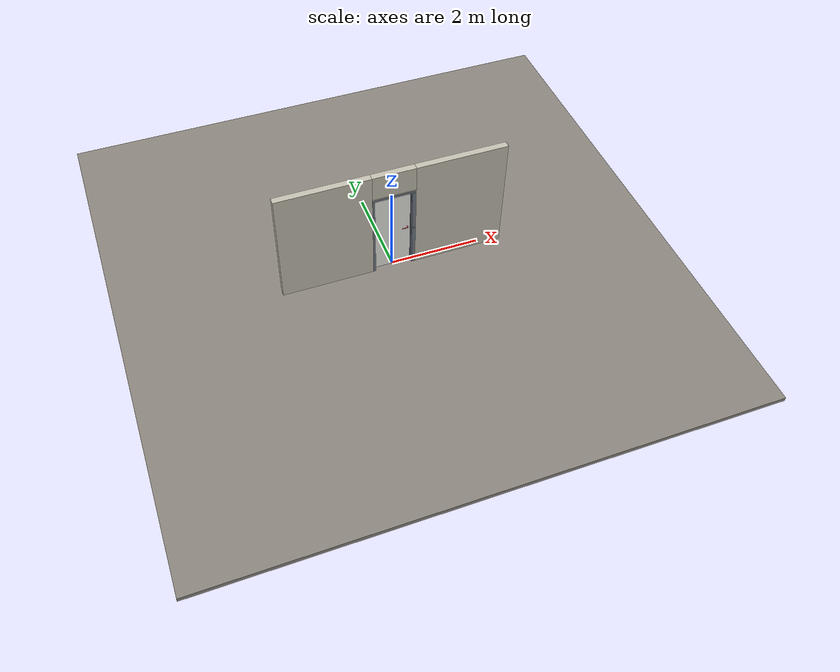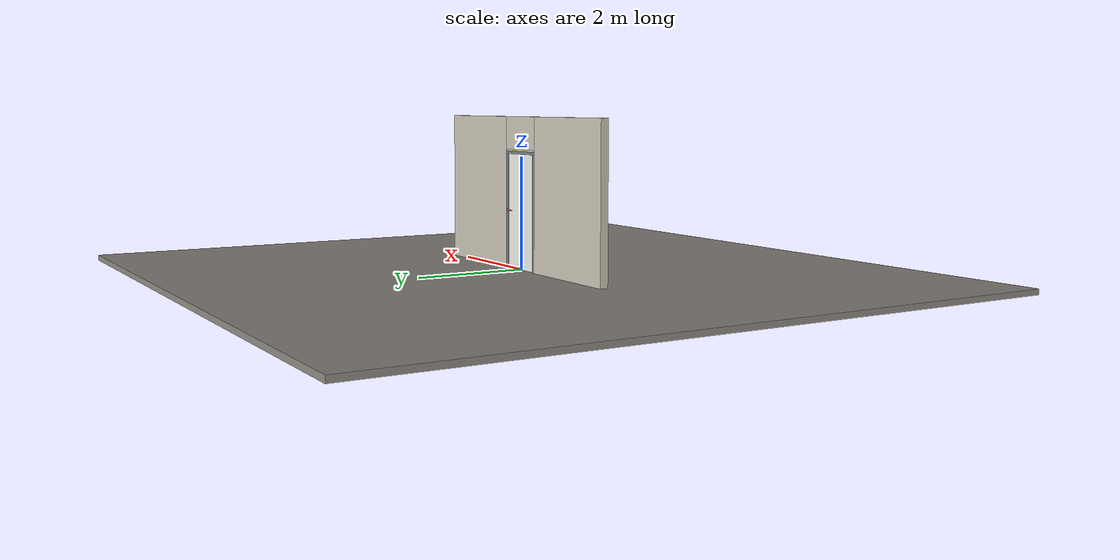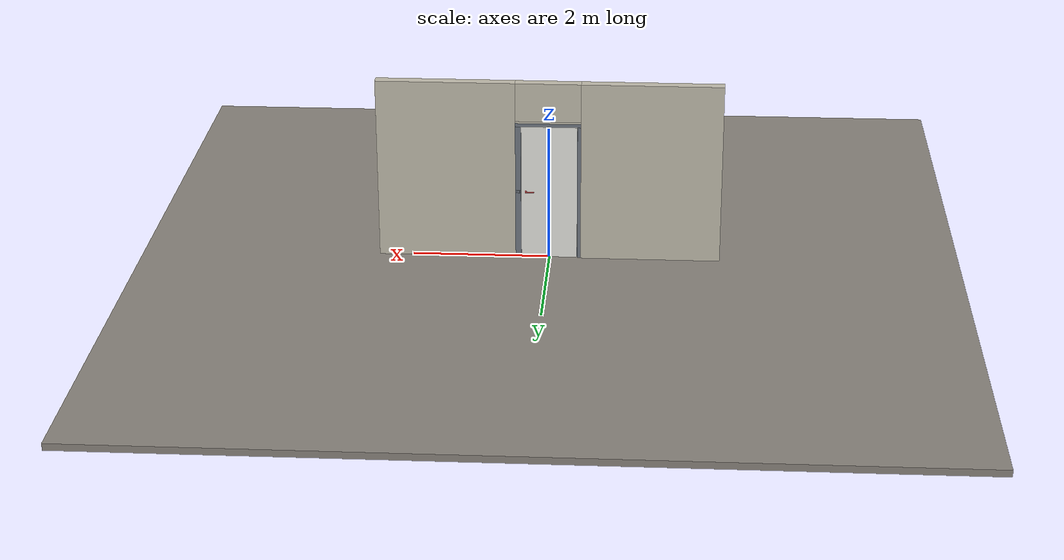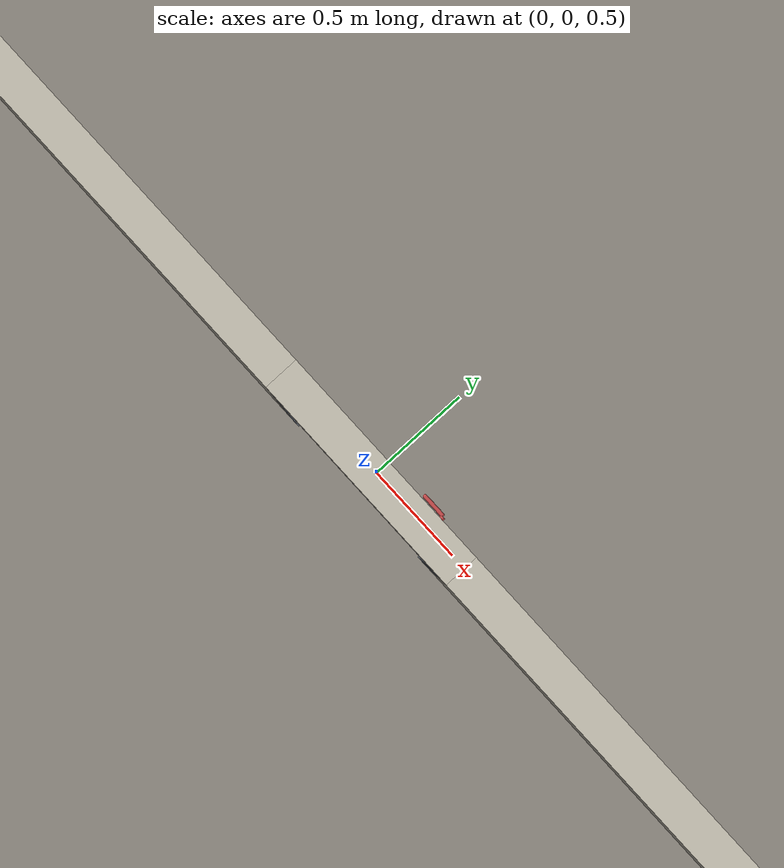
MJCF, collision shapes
<?xml version="1.0" ?>
<mujoco model="db0923_swing_single_minimal">
  <compiler angle="radian" meshdir="../../hardware" texturedir="../../textures" autolimits="true" inertiafromgeom="false"/>
  <option timestep="0.002" integrator="implicitfast" cone="elliptic" impratio="10" noslip_iterations="3">
    <flag multiccd="enable"/>
  </option>
  <size memory="16M"/>
  <default>
    <geom condim="4" solref="0.005 1" solimp="0.95 0.99 0.001"/>
    <joint solreflimit="0.005 1" solimplimit="0.95 0.99 0.001"/>
    <tendon solreflimit="0.005 1"/>
    <equality solref="0.002 1"/>
  </default>
  <visual>
    <headlight ambient="0.4 0.4 0.4" diffuse="0.7 0.7 0.7" specular="0.2 0.2 0.2"/>
    <quality shadowsize="4096"/>
    <map znear="0.01" zfar="60"/>
  </visual>
  <asset>
    <mesh name="lever_9f02b544cf" file="lever_9f02b544cf.obj"/>
    <material name="mat_floor" rgba="0.55 0.53 0.5 1" specular="0.2" shininess="0.15" reflectance="0"/>
    <material name="mat_wall" rgba="0.78 0.76 0.7 1" specular="0.2" shininess="0.1" reflectance="0"/>
    <material name="mat_leaf" rgba="0.93 0.93 0.91 1" specular="0.2" shininess="0.59" reflectance="0"/>
    <material name="mat_leaf_panel" rgba="0.856 0.856 0.837 1" specular="0.2" shininess="0.59" reflectance="0"/>
    <material name="mat_hinge" rgba="0.65 0.66 0.68 1" specular="0.74" shininess="0.5" reflectance="0.36"/>
    <material name="mat_op_nickel_satin" rgba="0.72 0.7 0.66 1" specular="0.8" shininess="0.65" reflectance="0.4"/>
    <material name="mat_trim" rgba="0.85 0.66 0.3 1" specular="0.8" shininess="0.75" reflectance="0.4"/>
    <material name="mat_bolt" rgba="0.75 0.76 0.77 1" specular="0.8" shininess="0.65" reflectance="0.4"/>
    <material name="mat_frame" rgba="0.45 0.48 0.52 1" specular="0.32" shininess="0.6" reflectance="0.08"/>
    <material name="mat_seal" rgba="0.1 0.1 0.1 1" specular="0.2" shininess="0.1" reflectance="0"/>
    <material name="mat_closer" rgba="0.22 0.17 0.13 1" specular="0.8" shininess="0.6" reflectance="0.4"/>
    <material name="mat_kick" rgba="0.75 0.76 0.77 1" specular="0.8" shininess="0.65" reflectance="0.4"/>
    <texture name="skybox" type="skybox" builtin="gradient" rgb1="0.6 0.7 0.85" rgb2="0.9 0.92 0.95" width="256" height="256"/>
  </asset>
  <worldbody>
    <light name="sun" pos="1.5 -2.5 4" dir="-0.3 0.5 -0.8" directional="true" diffuse="0.8 0.8 0.8" specular="0.3 0.3 0.3" castshadow="true"/>
    <light name="fill" pos="-1.5 2.5 3" dir="0.3 -0.5 -0.7" directional="true" diffuse="0.35 0.35 0.4" castshadow="false"/>
    <camera name="robot_view" pos="0 -2.585687 1.734312" xyaxes="1 0 0 0 0.26963 0.962964" fovy="52"/>
    <camera name="far_view" pos="0 2.498687 1.734312" xyaxes="-1 0 0 0 -0.26963 0.962964" fovy="52"/>
    <camera name="iso" pos="1.932062 -2.178937 2.141063" xyaxes="0.741536 0.670913 0 -0.242917 0.268487 0.932151" fovy="46"/>
    <camera name="detail_handle" pos="0.4155 -0.877 1.32" xyaxes="0.97561 0.219512 0 -0.070934 0.315262 0.94635" fovy="38"/>
    <geom name="floor" type="box" size="6 6 0.05" pos="0 0 -0.05" material="mat_floor" group="0" contype="1" conaffinity="1" friction="0.8 0.005 0.0001" density="2400"/>
    <geom name="wall_left" type="box" size="1.01975 0.0725 1.35" pos="-1.48025 -0.0435 1.35" material="mat_wall" group="0" contype="1" conaffinity="1" friction="0.6 0.005 0.0001" density="800"/>
    <geom name="wall_right" type="box" size="1.00475 0.0725 1.35" pos="1.49525 -0.0435 1.35" material="mat_wall" group="0" contype="1" conaffinity="1" friction="0.6 0.005 0.0001" density="800"/>
    <geom name="wall_header" type="box" size="0.4755 0.0725 0.2875" pos="0.015 -0.0435 2.4125" material="mat_wall" group="0" contype="1" conaffinity="1" friction="0.6 0.005 0.0001" density="800"/>
    <geom name="jamb_hinge" type="box" size="0.025 0.0725 1.0225" pos="-0.4355 -0.0435 1.0225" material="mat_frame" group="0" contype="1" conaffinity="1" friction="0.6 0.005 0.0001" density="300"/>
    <geom name="strike_1040_wall_n" type="box" size="0.04 0.05325 0.018" pos="0.4505 -0.06275 1.04" material="mat_frame" group="0" contype="1" conaffinity="1" friction="0.6 0.005 0.0001" density="300"/>
    <geom name="strike_1040_wall_p" type="box" size="0.04 0.008 0.018" pos="0.4505 0.0175 1.04" material="mat_frame" group="0" contype="1" conaffinity="1" friction="0.6 0.005 0.0001" density="300"/>
    <geom name="strike_1040_ramp" type="box" size="0.04 0.018028 0.018" pos="0.453782 0.018312 1.04" quat="0.957092 0 0 -0.289784" material="mat_frame" group="0" contype="1" conaffinity="1" friction="0.12 0.005 0.0001" density="300"/>
    <geom name="strike_1040_back" type="box" size="0.0285 0.0095 0.018" pos="0.462 0 1.04" material="mat_frame" group="0" contype="1" conaffinity="1" friction="0.6 0.005 0.0001" density="300"/>
    <geom name="jamb_strike_0" type="box" size="0.04 0.0725 0.511" pos="0.4505 -0.0435 0.511" material="mat_frame" group="0" contype="1" conaffinity="1" friction="0.6 0.005 0.0001" density="300"/>
    <geom name="jamb_strike_1" type="box" size="0.04 0.0725 0.4935" pos="0.4505 -0.0435 1.5515" material="mat_frame" group="0" contype="1" conaffinity="1" friction="0.6 0.005 0.0001" density="300"/>
    <geom name="jamb_head" type="box" size="0.4755 0.0725 0.025" pos="0.015 -0.0435 2.07" material="mat_frame" group="0" contype="1" conaffinity="1" friction="0.6 0.005 0.0001" density="300"/>
    <geom name="head_stud" type="box" size="0.4755 0.0725 0.015" pos="0.015 -0.0435 2.11" material="mat_wall" group="0" contype="1" conaffinity="1" friction="0.6 0.005 0.0001" density="500"/>
    <geom name="stop_hinge" type="box" size="0.0055 0.016 1.0225" pos="-0.405 -0.0385 1.0225" material="mat_frame" group="0" contype="1" conaffinity="1" friction="0.6 0.005 0.0001" density="300"/>
    <geom name="stop_strike" type="box" size="0.0055 0.016 1.0225" pos="0.405 -0.0385 1.0225" material="mat_frame" group="0" contype="1" conaffinity="1" friction="0.6 0.005 0.0001" density="300"/>
    <geom name="stop_head" type="box" size="0.4105 0.016 0.0055" pos="0 -0.0385 2.0395" material="mat_frame" group="0" contype="1" conaffinity="1" friction="0.6 0.005 0.0001" density="300"/>
    <site name="approach_point" pos="0 -1.5 0" quat="1 0 0 0" size="0.05" rgba="0.2 0.9 0.2 0.5" group="4"/>
    <site name="goal_point" pos="0 1.5 0" quat="1 0 0 0" size="0.05" rgba="0.2 0.9 0.2 0.5" group="4"/>
    <site name="door_plane_center" pos="0 0 1.0225" quat="1 0 0 0" size="0.02" rgba="0.2 0.9 0.2 0.5" group="4"/>
    <body name="leaf" pos="-0.4105 0 0">
      <inertial pos="0.4095 0 1.025" mass="54.025997" quat="-0.5 0.5 0.5 0.5" diaginertia="2.984508646 18.598269491 21.565345748"/>
      <joint name="leaf_hinge" type="hinge" axis="0 0 1" pos="0.003 0.029 0" limited="true" range="0 1.570796" solreflimit="0.02 1" damping="10.160326" frictionloss="1.119076" stiffness="12.827888" springref="-1.543512" armature="0.02"/>
      <geom name="leaf_slab" type="box" size="0.4065 0.022 1.016" pos="0.4095 0 1.025" material="mat_leaf" group="0" contype="1" conaffinity="1" friction="0.4 0.005 0.0001" density="1"/>
      <site name="leaf_edge_mid" pos="0.816 0 1.016" quat="1 0 0 0" size="0.02" rgba="0.2 0.9 0.2 0.5" group="4"/>
      <body name="leaf_handle" pos="0.746 0 1.04">
        <inertial pos="-0.030188 0 0" mass="0.924918" quat="0.707107 0 0 -0.707107" diaginertia="0.001725188 0.003587995 0.005135939"/>
        <joint name="leaf_handle_hinge" type="hinge" axis="0 -1 0" limited="true" range="0 0.96" damping="0.245624" frictionloss="0.048" stiffness="1.2" springref="-0.458333" armature="0.01"/>
        <geom name="leaf_handle_lever_n" type="mesh" mesh="lever_9f02b544cf" pos="0 -0.022 0" quat="0.707107 0.707107 0 0" material="mat_op_nickel_satin" group="1" contype="0" conaffinity="0" density="3000"/>
        <geom name="leaf_handle_lever_col_n" type="capsule" size="0.0095 0.053" pos="-0.0625 -0.077 0" quat="0.707107 0 -0.707107 0" material="mat_op_nickel_satin" group="3" contype="1" conaffinity="1" rgba="0.8 0.3 0.3 0.25" friction="0.7 0.01 0.0001" density="3000"/>
        <geom name="leaf_handle_hub_col_n" type="cylinder" size="0.012 0.022" pos="0 -0.052 0" quat="0.707107 -0.707107 0 0" material="mat_op_nickel_satin" group="3" contype="1" conaffinity="1" rgba="0.8 0.3 0.3 0.25" friction="0.6 0.005 0.0001" density="3000"/>
        <geom name="leaf_handle_lever_p" type="mesh" mesh="lever_9f02b544cf" pos="0 0.022 0" quat="-0.707107 0.707107 0 0" material="mat_op_nickel_satin" group="1" contype="0" conaffinity="0" density="3000"/>
        <geom name="leaf_handle_lever_col_p" type="capsule" size="0.0095 0.053" pos="-0.0625 0.077 0" quat="0.707107 0 -0.707107 0" material="mat_op_nickel_satin" group="3" contype="1" conaffinity="1" rgba="0.8 0.3 0.3 0.25" friction="0.7 0.01 0.0001" density="3000"/>
        <geom name="leaf_handle_hub_col_p" type="cylinder" size="0.012 0.022" pos="0 0.052 0" quat="0.707107 -0.707107 0 0" material="mat_op_nickel_satin" group="3" contype="1" conaffinity="1" rgba="0.8 0.3 0.3 0.25" friction="0.6 0.005 0.0001" density="3000"/>
        <site name="leaf_handle_grip_n" pos="-0.1 -0.077 0" quat="1 0 0 0" size="0.012" rgba="0.2 0.9 0.2 0.5" group="4"/>
        <site name="leaf_handle_grip_p" pos="-0.1 0.077 0" quat="1 0 0 0" size="0.012" rgba="0.2 0.9 0.2 0.5" group="4"/>
      </body>
      <body name="leaf_latch_bolt" pos="0.816 0 1.04">
        <inertial pos="-0.0055 0 0" mass="0.074627" quat="0.92388 -0.382683 0 0" diaginertia="0.000002271 0.000013255 0.000013255"/>
        <joint name="leaf_latch_bolt_slide" type="slide" axis="-1 0 0" limited="true" range="0 0.019" damping="2" frictionloss="0.3" stiffness="550" springref="-0.01" armature="0.1"/>
        <geom name="leaf_latch_bolt_capsule" type="capsule" size="0.008 0.0165" pos="-0.0055 0 0" quat="0.707107 0 0.707107 0" material="mat_bolt" group="0" contype="1" conaffinity="1" friction="0.2 0.005 0.0001" density="8500"/>
      </body>
    </body>
  </worldbody>
  <tendon>
    <fixed name="leaf_latch_bolt_coupling" limited="true" range="0 10">
      <joint joint="leaf_latch_bolt_slide" coef="1"/>
      <joint joint="leaf_handle_hinge" coef="-0.020879"/>
    </fixed>
  </tendon>
  <sensor>
    <jointpos name="leaf_hinge_pos" joint="leaf_hinge"/>
    <jointvel name="leaf_hinge_vel" joint="leaf_hinge"/>
    <jointpos name="leaf_handle_hinge_pos" joint="leaf_handle_hinge"/>
    <jointvel name="leaf_handle_hinge_vel" joint="leaf_handle_hinge"/>
    <jointpos name="leaf_latch_bolt_slide_pos" joint="leaf_latch_bolt_slide"/>
    <jointvel name="leaf_latch_bolt_slide_vel" joint="leaf_latch_bolt_slide"/>
  </sensor>
</mujoco>
